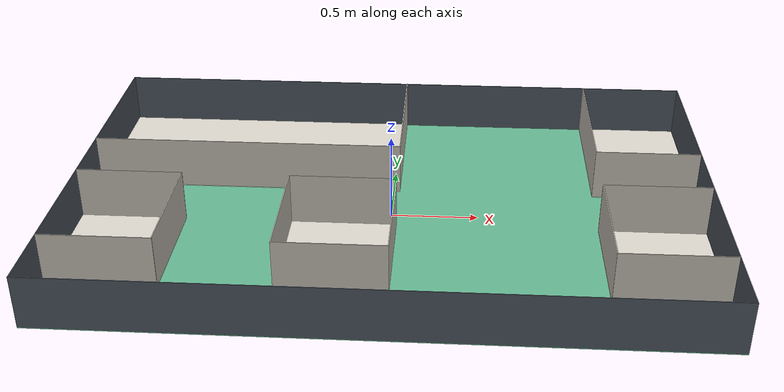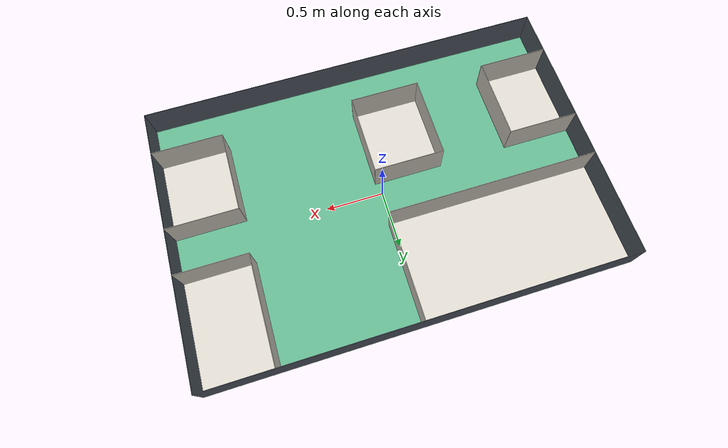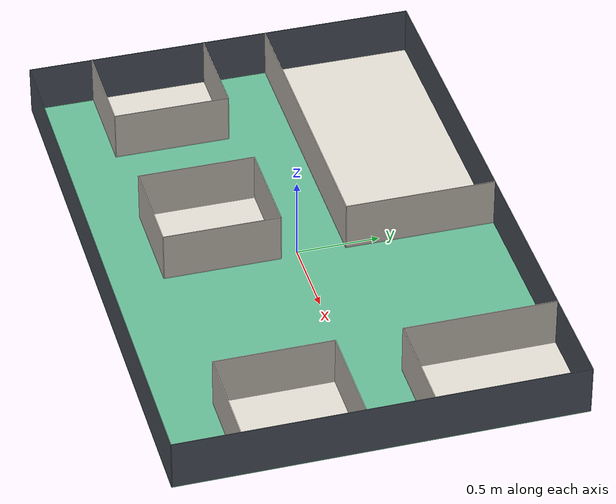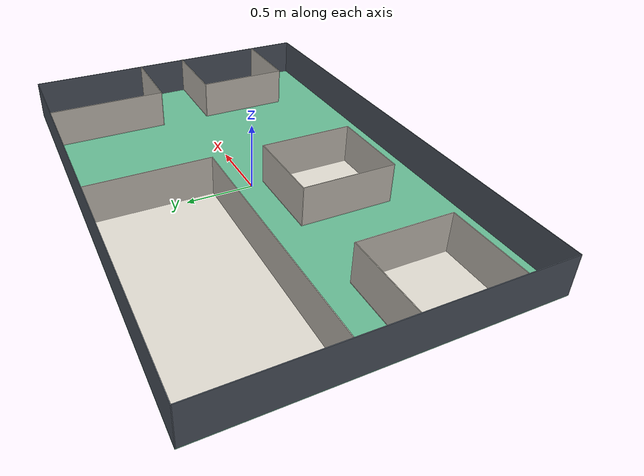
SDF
<?xml version='1.0' encoding='utf-8'?>
<sdf version="1.7">
  <world name="facility_map">
    <plugin
      filename="ignition-gazebo-physics-system"
      name="ignition::gazebo::systems::Physics" />
    <plugin
      filename="ignition-gazebo-user-commands-system"
      name="ignition::gazebo::systems::UserCommands" />
    <plugin
      filename="ignition-gazebo-scene-broadcaster-system"
      name="ignition::gazebo::systems::SceneBroadcaster" />
    <plugin
      filename="ignition-gazebo-sensors-system"
      name="ignition::gazebo::systems::Sensors">
      <render_engine>ogre2</render_engine>
    </plugin>
    <plugin
      filename="ignition-gazebo-imu-system"
      name="ignition::gazebo::systems::Imu" />

    <physics name="1ms" type="ode">
      <max_step_size>0.001</max_step_size>
      <real_time_factor>1.0</real_time_factor>
      <real_time_update_rate>1000</real_time_update_rate>
      <ode>
        <solver>
          <type>quick</type>
          <iters>50</iters>
          <sor>1.3</sor>
        </solver>
        <constraints>
          <cfm>0.0</cfm>
          <erp>0.2</erp>
          <contact_max_correcting_vel>100.0</contact_max_correcting_vel>
          <contact_surface_layer>0.001</contact_surface_layer>
        </constraints>
      </ode>
    </physics>
    <scene>
      <ambient>0.55 0.55 0.55 1</ambient>
      <background>0.72 0.78 0.84 1</background>
      <shadows>true</shadows>
    </scene>
    <light name="sun" type="directional">
      <pose>0 0 5 0 0 0</pose>
      <diffuse>0.9 0.9 0.9 1</diffuse>
      <specular>0.2 0.2 0.2 1</specular>
      <direction>-0.45 0.25 -0.86</direction>
      <cast_shadows>true</cast_shadows>
    </light>
    <model name="facility_layout">
      <static>true</static>
      <link name="layout_link">
        <collision name="floor_plate_collision">
          <pose>0.000000 0.000000 -0.002500 0 0 0</pose>
          <geometry>
            <box>
              <size>3.600000 2.400000 0.005000</size>
            </box>
          </geometry>
        </collision>
        <visual name="floor_plate_visual">
          <pose>0.000000 0.000000 -0.002500 0 0 0</pose>
          <geometry>
            <box>
              <size>3.600000 2.400000 0.005000</size>
            </box>
          </geometry>
          <material>
            <ambient>0.32 0.62 0.48 1</ambient>
            <diffuse>0.40 0.73 0.58 1</diffuse>
            <specular>0.08 0.08 0.08 1</specular>
          </material>
          <cast_shadows>true</cast_shadows>
        </visual>
        <collision name="floor_north_wall_collision">
          <pose>0.000000 1.197500 0.150000 0 0 0</pose>
          <geometry>
            <box>
              <size>3.600000 0.005000 0.300000</size>
            </box>
          </geometry>
        </collision>
        <visual name="floor_north_wall_visual">
          <pose>0.000000 1.197500 0.150000 0 0 0</pose>
          <geometry>
            <box>
              <size>3.600000 0.005000 0.300000</size>
            </box>
          </geometry>
          <material>
            <ambient>0.18 0.20 0.23 1</ambient>
            <diffuse>0.29 0.32 0.36 1</diffuse>
            <specular>0.08 0.08 0.08 1</specular>
          </material>
          <cast_shadows>true</cast_shadows>
        </visual>
        <collision name="floor_south_wall_collision">
          <pose>0.000000 -1.197500 0.150000 0 0 0</pose>
          <geometry>
            <box>
              <size>3.600000 0.005000 0.300000</size>
            </box>
          </geometry>
        </collision>
        <visual name="floor_south_wall_visual">
          <pose>0.000000 -1.197500 0.150000 0 0 0</pose>
          <geometry>
            <box>
              <size>3.600000 0.005000 0.300000</size>
            </box>
          </geometry>
          <material>
            <ambient>0.18 0.20 0.23 1</ambient>
            <diffuse>0.29 0.32 0.36 1</diffuse>
            <specular>0.08 0.08 0.08 1</specular>
          </material>
          <cast_shadows>true</cast_shadows>
        </visual>
        <collision name="floor_east_wall_collision">
          <pose>1.797500 0.000000 0.150000 0 0 0</pose>
          <geometry>
            <box>
              <size>0.005000 2.390000 0.300000</size>
            </box>
          </geometry>
        </collision>
        <visual name="floor_east_wall_visual">
          <pose>1.797500 0.000000 0.150000 0 0 0</pose>
          <geometry>
            <box>
              <size>0.005000 2.390000 0.300000</size>
            </box>
          </geometry>
          <material>
            <ambient>0.18 0.20 0.23 1</ambient>
            <diffuse>0.29 0.32 0.36 1</diffuse>
            <specular>0.08 0.08 0.08 1</specular>
          </material>
          <cast_shadows>true</cast_shadows>
        </visual>
        <collision name="floor_west_wall_collision">
          <pose>-1.797500 0.000000 0.150000 0 0 0</pose>
          <geometry>
            <box>
              <size>0.005000 2.390000 0.300000</size>
            </box>
          </geometry>
        </collision>
        <visual name="floor_west_wall_visual">
          <pose>-1.797500 0.000000 0.150000 0 0 0</pose>
          <geometry>
            <box>
              <size>0.005000 2.390000 0.300000</size>
            </box>
          </geometry>
          <material>
            <ambient>0.18 0.20 0.23 1</ambient>
            <diffuse>0.29 0.32 0.36 1</diffuse>
            <specular>0.08 0.08 0.08 1</specular>
          </material>
          <cast_shadows>true</cast_shadows>
        </visual>
        <collision name="equipment_1_plate_collision">
          <pose>-0.880000 0.740000 0.002500 0 0 0</pose>
          <geometry>
            <box>
              <size>1.830000 0.910000 0.005000</size>
            </box>
          </geometry>
        </collision>
        <visual name="equipment_1_plate_visual">
          <pose>-0.880000 0.740000 0.002500 0 0 0</pose>
          <geometry>
            <box>
              <size>1.830000 0.910000 0.005000</size>
            </box>
          </geometry>
          <material>
            <ambient>0.72 0.70 0.66 1</ambient>
            <diffuse>0.88 0.86 0.82 1</diffuse>
            <specular>0.08 0.08 0.08 1</specular>
          </material>
          <cast_shadows>true</cast_shadows>
        </visual>
        <collision name="equipment_1_south_wall_collision">
          <pose>-0.880000 0.287500 0.155000 0 0 0</pose>
          <geometry>
            <box>
              <size>1.830000 0.005000 0.300000</size>
            </box>
          </geometry>
        </collision>
        <visual name="equipment_1_south_wall_visual">
          <pose>-0.880000 0.287500 0.155000 0 0 0</pose>
          <geometry>
            <box>
              <size>1.830000 0.005000 0.300000</size>
            </box>
          </geometry>
          <material>
            <ambient>0.56 0.55 0.52 1</ambient>
            <diffuse>0.76 0.74 0.70 1</diffuse>
            <specular>0.08 0.08 0.08 1</specular>
          </material>
          <cast_shadows>true</cast_shadows>
        </visual>
        <collision name="equipment_1_east_wall_collision">
          <pose>0.032500 0.742500 0.155000 0 0 0</pose>
          <geometry>
            <box>
              <size>0.005000 0.905000 0.300000</size>
            </box>
          </geometry>
        </collision>
        <visual name="equipment_1_east_wall_visual">
          <pose>0.032500 0.742500 0.155000 0 0 0</pose>
          <geometry>
            <box>
              <size>0.005000 0.905000 0.300000</size>
            </box>
          </geometry>
          <material>
            <ambient>0.56 0.55 0.52 1</ambient>
            <diffuse>0.76 0.74 0.70 1</diffuse>
            <specular>0.08 0.08 0.08 1</specular>
          </material>
          <cast_shadows>true</cast_shadows>
        </visual>
        <collision name="equipment_2_plate_collision">
          <pose>1.490000 0.740000 0.002500 0 0 0</pose>
          <geometry>
            <box>
              <size>0.610000 0.910000 0.005000</size>
            </box>
          </geometry>
        </collision>
        <visual name="equipment_2_plate_visual">
          <pose>1.490000 0.740000 0.002500 0 0 0</pose>
          <geometry>
            <box>
              <size>0.610000 0.910000 0.005000</size>
            </box>
          </geometry>
          <material>
            <ambient>0.72 0.70 0.66 1</ambient>
            <diffuse>0.88 0.86 0.82 1</diffuse>
            <specular>0.08 0.08 0.08 1</specular>
          </material>
          <cast_shadows>true</cast_shadows>
        </visual>
        <collision name="equipment_2_south_wall_collision">
          <pose>1.490000 0.287500 0.155000 0 0 0</pose>
          <geometry>
            <box>
              <size>0.610000 0.005000 0.300000</size>
            </box>
          </geometry>
        </collision>
        <visual name="equipment_2_south_wall_visual">
          <pose>1.490000 0.287500 0.155000 0 0 0</pose>
          <geometry>
            <box>
              <size>0.610000 0.005000 0.300000</size>
            </box>
          </geometry>
          <material>
            <ambient>0.56 0.55 0.52 1</ambient>
            <diffuse>0.76 0.74 0.70 1</diffuse>
            <specular>0.08 0.08 0.08 1</specular>
          </material>
          <cast_shadows>true</cast_shadows>
        </visual>
        <collision name="equipment_2_west_wall_collision">
          <pose>1.187500 0.742500 0.155000 0 0 0</pose>
          <geometry>
            <box>
              <size>0.005000 0.905000 0.300000</size>
            </box>
          </geometry>
        </collision>
        <visual name="equipment_2_west_wall_visual">
          <pose>1.187500 0.742500 0.155000 0 0 0</pose>
          <geometry>
            <box>
              <size>0.005000 0.905000 0.300000</size>
            </box>
          </geometry>
          <material>
            <ambient>0.56 0.55 0.52 1</ambient>
            <diffuse>0.76 0.74 0.70 1</diffuse>
            <specular>0.08 0.08 0.08 1</specular>
          </material>
          <cast_shadows>true</cast_shadows>
        </visual>
        <collision name="equipment_3_plate_collision">
          <pose>1.490000 -0.457500 0.002500 0 0 0</pose>
          <geometry>
            <box>
              <size>0.610000 0.710000 0.005000</size>
            </box>
          </geometry>
        </collision>
        <visual name="equipment_3_plate_visual">
          <pose>1.490000 -0.457500 0.002500 0 0 0</pose>
          <geometry>
            <box>
              <size>0.610000 0.710000 0.005000</size>
            </box>
          </geometry>
          <material>
            <ambient>0.72 0.70 0.66 1</ambient>
            <diffuse>0.88 0.86 0.82 1</diffuse>
            <specular>0.08 0.08 0.08 1</specular>
          </material>
          <cast_shadows>true</cast_shadows>
        </visual>
        <collision name="equipment_3_north_wall_collision">
          <pose>1.490000 -0.105000 0.155000 0 0 0</pose>
          <geometry>
            <box>
              <size>0.610000 0.005000 0.300000</size>
            </box>
          </geometry>
        </collision>
        <visual name="equipment_3_north_wall_visual">
          <pose>1.490000 -0.105000 0.155000 0 0 0</pose>
          <geometry>
            <box>
              <size>0.610000 0.005000 0.300000</size>
            </box>
          </geometry>
          <material>
            <ambient>0.56 0.55 0.52 1</ambient>
            <diffuse>0.76 0.74 0.70 1</diffuse>
            <specular>0.08 0.08 0.08 1</specular>
          </material>
          <cast_shadows>true</cast_shadows>
        </visual>
        <collision name="equipment_3_south_wall_collision">
          <pose>1.490000 -0.810000 0.155000 0 0 0</pose>
          <geometry>
            <box>
              <size>0.610000 0.005000 0.300000</size>
            </box>
          </geometry>
        </collision>
        <visual name="equipment_3_south_wall_visual">
          <pose>1.490000 -0.810000 0.155000 0 0 0</pose>
          <geometry>
            <box>
              <size>0.610000 0.005000 0.300000</size>
            </box>
          </geometry>
          <material>
            <ambient>0.56 0.55 0.52 1</ambient>
            <diffuse>0.76 0.74 0.70 1</diffuse>
            <specular>0.08 0.08 0.08 1</specular>
          </material>
          <cast_shadows>true</cast_shadows>
        </visual>
        <collision name="equipment_3_west_wall_collision">
          <pose>1.187500 -0.457500 0.155000 0 0 0</pose>
          <geometry>
            <box>
              <size>0.005000 0.700000 0.300000</size>
            </box>
          </geometry>
        </collision>
        <visual name="equipment_3_west_wall_visual">
          <pose>1.187500 -0.457500 0.155000 0 0 0</pose>
          <geometry>
            <box>
              <size>0.005000 0.700000 0.300000</size>
            </box>
          </geometry>
          <material>
            <ambient>0.56 0.55 0.52 1</ambient>
            <diffuse>0.76 0.74 0.70 1</diffuse>
            <specular>0.08 0.08 0.08 1</specular>
          </material>
          <cast_shadows>true</cast_shadows>
        </visual>
        <collision name="equipment_4_plate_collision">
          <pose>-0.270000 -0.457500 0.002500 0 0 0</pose>
          <geometry>
            <box>
              <size>0.610000 0.710000 0.005000</size>
            </box>
          </geometry>
        </collision>
        <visual name="equipment_4_plate_visual">
          <pose>-0.270000 -0.457500 0.002500 0 0 0</pose>
          <geometry>
            <box>
              <size>0.610000 0.710000 0.005000</size>
            </box>
          </geometry>
          <material>
            <ambient>0.72 0.70 0.66 1</ambient>
            <diffuse>0.88 0.86 0.82 1</diffuse>
            <specular>0.08 0.08 0.08 1</specular>
          </material>
          <cast_shadows>true</cast_shadows>
        </visual>
        <collision name="equipment_4_north_wall_collision">
          <pose>-0.270000 -0.105000 0.155000 0 0 0</pose>
          <geometry>
            <box>
              <size>0.610000 0.005000 0.300000</size>
            </box>
          </geometry>
        </collision>
        <visual name="equipment_4_north_wall_visual">
          <pose>-0.270000 -0.105000 0.155000 0 0 0</pose>
          <geometry>
            <box>
              <size>0.610000 0.005000 0.300000</size>
            </box>
          </geometry>
          <material>
            <ambient>0.56 0.55 0.52 1</ambient>
            <diffuse>0.76 0.74 0.70 1</diffuse>
            <specular>0.08 0.08 0.08 1</specular>
          </material>
          <cast_shadows>true</cast_shadows>
        </visual>
        <collision name="equipment_4_south_wall_collision">
          <pose>-0.270000 -0.810000 0.155000 0 0 0</pose>
          <geometry>
            <box>
              <size>0.610000 0.005000 0.300000</size>
            </box>
          </geometry>
        </collision>
        <visual name="equipment_4_south_wall_visual">
          <pose>-0.270000 -0.810000 0.155000 0 0 0</pose>
          <geometry>
            <box>
              <size>0.610000 0.005000 0.300000</size>
            </box>
          </geometry>
          <material>
            <ambient>0.56 0.55 0.52 1</ambient>
            <diffuse>0.76 0.74 0.70 1</diffuse>
            <specular>0.08 0.08 0.08 1</specular>
          </material>
          <cast_shadows>true</cast_shadows>
        </visual>
        <collision name="equipment_4_east_wall_collision">
          <pose>0.032500 -0.457500 0.155000 0 0 0</pose>
          <geometry>
            <box>
              <size>0.005000 0.700000 0.300000</size>
            </box>
          </geometry>
        </collision>
        <visual name="equipment_4_east_wall_visual">
          <pose>0.032500 -0.457500 0.155000 0 0 0</pose>
          <geometry>
            <box>
              <size>0.005000 0.700000 0.300000</size>
            </box>
          </geometry>
          <material>
            <ambient>0.56 0.55 0.52 1</ambient>
            <diffuse>0.76 0.74 0.70 1</diffuse>
            <specular>0.08 0.08 0.08 1</specular>
          </material>
          <cast_shadows>true</cast_shadows>
        </visual>
        <collision name="equipment_4_west_wall_collision">
          <pose>-0.572500 -0.457500 0.155000 0 0 0</pose>
          <geometry>
            <box>
              <size>0.005000 0.700000 0.300000</size>
            </box>
          </geometry>
        </collision>
        <visual name="equipment_4_west_wall_visual">
          <pose>-0.572500 -0.457500 0.155000 0 0 0</pose>
          <geometry>
            <box>
              <size>0.005000 0.700000 0.300000</size>
            </box>
          </geometry>
          <material>
            <ambient>0.56 0.55 0.52 1</ambient>
            <diffuse>0.76 0.74 0.70 1</diffuse>
            <specular>0.08 0.08 0.08 1</specular>
          </material>
          <cast_shadows>true</cast_shadows>
        </visual>
        <collision name="equipment_5_plate_collision">
          <pose>-1.490000 -0.457500 0.002500 0 0 0</pose>
          <geometry>
            <box>
              <size>0.610000 0.710000 0.005000</size>
            </box>
          </geometry>
        </collision>
        <visual name="equipment_5_plate_visual">
          <pose>-1.490000 -0.457500 0.002500 0 0 0</pose>
          <geometry>
            <box>
              <size>0.610000 0.710000 0.005000</size>
            </box>
          </geometry>
          <material>
            <ambient>0.72 0.70 0.66 1</ambient>
            <diffuse>0.88 0.86 0.82 1</diffuse>
            <specular>0.08 0.08 0.08 1</specular>
          </material>
          <cast_shadows>true</cast_shadows>
        </visual>
        <collision name="equipment_5_north_wall_collision">
          <pose>-1.490000 -0.105000 0.155000 0 0 0</pose>
          <geometry>
            <box>
              <size>0.610000 0.005000 0.300000</size>
            </box>
          </geometry>
        </collision>
        <visual name="equipment_5_north_wall_visual">
          <pose>-1.490000 -0.105000 0.155000 0 0 0</pose>
          <geometry>
            <box>
              <size>0.610000 0.005000 0.300000</size>
            </box>
          </geometry>
          <material>
            <ambient>0.56 0.55 0.52 1</ambient>
            <diffuse>0.76 0.74 0.70 1</diffuse>
            <specular>0.08 0.08 0.08 1</specular>
          </material>
          <cast_shadows>true</cast_shadows>
        </visual>
        <collision name="equipment_5_south_wall_collision">
          <pose>-1.490000 -0.810000 0.155000 0 0 0</pose>
          <geometry>
            <box>
              <size>0.610000 0.005000 0.300000</size>
            </box>
          </geometry>
        </collision>
        <visual name="equipment_5_south_wall_visual">
          <pose>-1.490000 -0.810000 0.155000 0 0 0</pose>
          <geometry>
            <box>
              <size>0.610000 0.005000 0.300000</size>
            </box>
          </geometry>
          <material>
            <ambient>0.56 0.55 0.52 1</ambient>
            <diffuse>0.76 0.74 0.70 1</diffuse>
            <specular>0.08 0.08 0.08 1</specular>
          </material>
          <cast_shadows>true</cast_shadows>
        </visual>
        <collision name="equipment_5_east_wall_collision">
          <pose>-1.187500 -0.457500 0.155000 0 0 0</pose>
          <geometry>
            <box>
              <size>0.005000 0.700000 0.300000</size>
            </box>
          </geometry>
        </collision>
        <visual name="equipment_5_east_wall_visual">
          <pose>-1.187500 -0.457500 0.155000 0 0 0</pose>
          <geometry>
            <box>
              <size>0.005000 0.700000 0.300000</size>
            </box>
          </geometry>
          <material>
            <ambient>0.56 0.55 0.52 1</ambient>
            <diffuse>0.76 0.74 0.70 1</diffuse>
            <specular>0.08 0.08 0.08 1</specular>
          </material>
          <cast_shadows>true</cast_shadows>
        </visual>
      </link>
    </model>
  </world>
</sdf>
